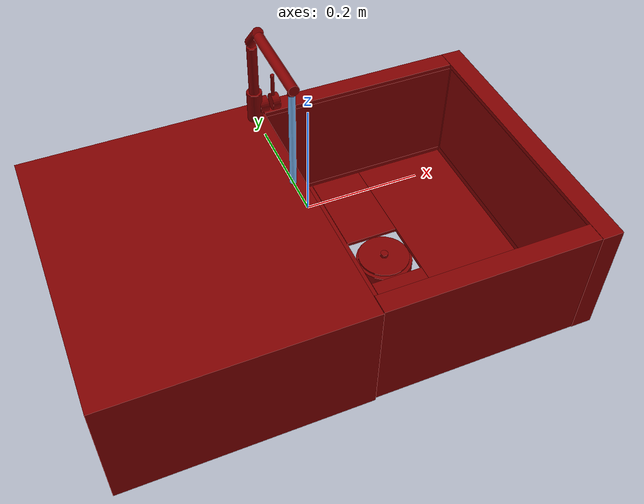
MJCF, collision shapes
<mujoco model="model">
  <compiler angle="radian"/>
  <asset>
    <mesh file="visuals/handle.obj" name="handle_vis"/>
    <mesh file="visuals/Body001.obj" name="Body001_vis"/>
    <mesh file="visuals/Funnel001.obj" name="Funnel001_vis"/>
    <mesh file="visuals/spout.obj" name="spout_vis"/>
    <texture file="visuals/T_BC001.png" name="Body001_material" type="2d"/>
    <material name="Body001_material" rgba="1 1 1 1.0" texture="Body001_material" shininess="0.587886393070221" specular="1"/>
    <texture file="visuals/T_BC001.png" name="handle_material" type="2d"/>
    <material name="handle_material" rgba="1 1 1 1.0" texture="handle_material" shininess="0.587886393070221" specular="1"/>
    <texture file="visuals/T_BC001.png" name="Funnel001_material" type="2d"/>
    <material name="Funnel001_material" rgba="1 1 1 1.0" texture="Funnel001_material" shininess="0.587886393070221" specular="1"/>
    <texture file="visuals/T_BC001.png" name="spout_material" type="2d"/>
    <material name="spout_material" rgba="1 1 1 1.0" texture="spout_material" shininess="0.587886393070221" specular="1"/>
  </asset>
  <default>
    <default class="visual">
      <geom conaffinity="0" contype="0" group="1" type="mesh"/>
    </default>
    <default class="collision">
      <geom group="0" rgba="0.5 0 0 0.5"/>
    </default>
    <default class="spawn">
      <geom group="0" rgba="1 1 1 0.5" contype="0" conaffinity="0"/>
      <site group="0" rgba="1 1 1 0.5"/>
    </default>
    <default class="region">
      <geom group="1" conaffinity="0" contype="0" rgba="0 1 0 0"/>
    </default>
  </default>
  <worldbody>
    <body>
      <body name="object">
        <geom mesh="Body001_vis" type="mesh" solimp="0.998 0.998 0.001" solref="0.001 1" density="100" friction="0.95 0.3 0.1" class="visual" material="Body001_material"/>
        <geom class="collision" type="box" pos="-0.21076612174510956 -0.0005561533616855741 -0.0936313271522522" size="0.22134000062942505 0.26505807042121887 0.11628822237253189" quat="1.0 0.0 0.0 0.0"/>
        <geom class="collision" type="box" pos="0.41280630230903625 -0.0005561533616855741 -0.09086722880601883" size="0.019370416179299355 0.26505807042121887 0.11398898810148239" quat="1.0 0.0 0.0 0.0"/>
        <geom class="collision" type="box" pos="0.20225779712200165 0.24694393575191498 -0.09086722880601883" size="0.19086593389511108 0.017557986080646515 0.11398898810148239" quat="1.0 0.0 0.0 0.0"/>
        <geom class="collision" type="box" pos="0.20225779712200165 -0.247104212641716 -0.09086722880601883" size="0.19086593389511108 0.017557986080646515 0.11398898810148239" quat="1.0 0.0 0.0 0.0"/>
        <geom class="collision" type="box" pos="0.20225779712200165 -0.22995342314243317 -0.08435947448015213" size="0.19086593389511108 0.0014722681371495128 0.09959064424037933" quat="1.0 0.0 0.0 0.0"/>
        <geom class="collision" type="box" pos="0.20225779712200165 0.2299175262451172 -0.08435947448015213" size="0.19086593389511108 0.0014722681371495128 0.09959064424037933" quat="1.0 0.0 0.0 0.0"/>
        <geom class="collision" type="box" pos="0.011570149101316929 0.00032855570316314697 -0.08435947448015213" size="0.0011739537585526705 0.22482742369174957 0.09959064424037933" quat="1.0 0.0 0.0 0.0"/>
        <geom class="collision" type="box" pos="0.3944794535636902 0.00032855570316314697 -0.08435947448015213" size="0.0011739537585526705 0.22482742369174957 0.09959064424037933" quat="1.0 0.0 0.0 0.0"/>
        <geom class="collision" type="box" pos="0.05898582190275192 0.00030895788222551346 -0.19227582216262817" size="0.04391580447554588 0.2241944819688797 0.0038830465637147427" quat="1.0 0.0 0.0 0.0"/>
        <geom class="collision" type="box" pos="0.2974621653556824 0.00030895788222551346 -0.19227582216262817" size="0.09127664566040039 0.2241944819688797 0.0038830465637147427" quat="1.0 0.0 0.0 0.0"/>
        <geom class="collision" type="box" pos="0.15470601618289948 0.13899290561676025 -0.19227582216262817" size="0.05106835067272186 0.08551053702831268 0.0038830465637147427" quat="1.0 0.0 0.0 0.0"/>
        <geom class="collision" type="box" pos="0.15470601618289948 -0.13797089457511902 -0.19227582216262817" size="0.05106835067272186 0.08478891849517822 0.0038830465637147427" quat="1.0 0.0 0.0 0.0"/>
        <geom class="collision" type="cylinder" pos="-0.008167045190930367 0.22527767717838287 0.05134399235248566" size="0.013920615427196026 0.02904500439763069" quat="1.0 0.0 0.0 0.0"/>
        <geom class="collision" type="cylinder" pos="0.006391857750713825 0.22415068745613098 0.05050051584839821" size="0.013920619152486324 0.008274792693555355" quat="0.7071069478988647 -4.7503021960437763e-08 0.7071065902709961 4.750299709144201e-08"/>
        <geom class="collision" type="cylinder" pos="0.1553701013326645 -0.00035774707794189453 -0.21205151081085205" size="0.05291753634810448 0.016290171071887016" quat="1.0 0.0 0.0 0.0"/>
        <body name="handle">
          <joint axis="1.0 0.0 0.0" pos="0.020880868658423424 0.22473663091659546 0.0504760667681694" limited="true" name="handle_joint_hinge_0" type="hinge" range="-0.7853981633974483 0.7853981633974483" damping="1" frictionloss="1" armature=".01" stiffness="0.05"/>
          <joint axis="0.0 1.0 0.0" pos="0.020880868658423424 0.22473663091659546 0.0504760667681694" limited="true" name="handle_joint_hinge_1" type="hinge" range="0.0 0.2617993877991494" damping="1" frictionloss="1" armature=".01" stiffness="0.05"/>
          <geom mesh="handle_vis" type="mesh" solimp="0.998 0.998 0.001" solref="0.001 1" density="100" friction="0.95 0.3 0.1" class="visual" material="handle_material"/>
          <geom class="collision" type="cylinder" pos="0.02650473266839981 0.22471670806407928 0.08590854704380035" size="0.003368337405845523 0.021307164803147316" quat="1.9470718370939721e-07 -6.717942824252532e-08 1.0 1.3435884227419592e-07"/>
          <geom class="collision" type="cylinder" pos="0.028817294165492058 0.22448906302452087 0.05017698183655739" size="0.014957386068999767 0.006886166986078024" quat="0.70710688829422 -4.7503021960437763e-08 0.7071066498756409 4.750300774958305e-08"/>
        </body>
        <body name="Funnel001">
          <joint axis="0.0 0.0 1.0" pos="0.15455596148967743 -0.00021751970052719116 -0.1863158643245697" limited="true" name="Funnel001_joint" range="0.0 0.1" type="slide" damping="1" frictionloss="1" armature=".01" stiffness="0.05"/>
          <geom mesh="Funnel001_vis" type="mesh" solimp="0.998 0.998 0.001" solref="0.001 1" density="100" friction="0.95 0.3 0.1" class="visual" material="Funnel001_material"/>
          <geom class="collision" type="cylinder" pos="0.15409749746322632 -0.00035774707794189453 -0.18979740142822266" size="0.04837030544877052 0.0016084375092759728" quat="1.0 0.0 0.0 0.0"/>
          <geom class="collision" type="cylinder" pos="0.1546410471200943 -0.00022231147158890963 -0.18476206064224243" size="0.007228328380733728 0.0034357034601271152" quat="1.0 0.0 0.0 0.0"/>
        </body>
        <body name="spout">
          <joint axis="0.0 0.0 1.0" pos="-0.008259943686425686 0.2240859866142273 0.19120851159095764" limited="true" name="spout_joint" range="0.0 0.7853981633974483" type="hinge" damping="1" frictionloss="1" armature=".01" stiffness="0.05"/>
          <site type="cylinder" rgba="0.5 0.75 1 1" size="0.005772154778242111 0.2162049263715744" pos="-0.008217005990445614 0.04347442463040352 -0.010260945186018944" name="water"/>
          <geom mesh="spout_vis" type="mesh" solimp="0.998 0.998 0.001" solref="0.001 1" density="100" friction="0.95 0.3 0.1" class="visual" material="spout_material"/>
          <geom class="collision" type="cylinder" pos="-0.008585430681705475 0.22403819859027863 0.12787964940071106" size="0.009026975370943546 0.047061484307050705" quat="1.0 0.0 0.0 0.0"/>
          <geom class="collision" type="cylinder" pos="-0.008585430681705475 0.10862398147583008 0.2191425859928131" size="0.009026975370943546 0.07580804079771042" quat="0.7071068286895752 0.7071067690849304 1.5700924318127872e-16 5.9269340452702814e-24"/>
          <geom class="collision" type="cylinder" pos="-0.008585432544350624 0.20785319805145264 0.20345309376716614" size="0.009639048017561436 0.029844213277101517" quat="0.9302526712417603 0.36691954731941223 8.147251254125512e-17 3.892325692199141e-24"/>
          <geom class="collision" type="cylinder" pos="-0.008585430681705475 0.04354710876941681 0.20944294333457947" size="0.006854245904833078 0.003997443709522486" quat="1.0 0.0 0.0 0.0"/>
        </body>
        <geom class="region" name="reg_main" type="box" pos="-7.450580596923828e-09 0.0 -0.10267628729343414" size="0.43087199330329895 0.26440146565437317 0.12494564056396484"/>
        <geom class="region" name="reg_basin" type="box" pos="0.20258470065891743 -0.0004663541913032532 -0.07807298935949802" size="0.18709026090800762 0.2266618236899376 0.09978893958032131"/>
      </body>
    </body>
  </worldbody>
  <actuator>
    <motor name="handle_joint_hinge_0_actuator" joint="handle_joint_hinge_0" gear="10"/>
    <motor name="handle_joint_hinge_1_actuator" joint="handle_joint_hinge_1" gear="10"/>
    <motor name="Funnel001_joint_actuator" joint="Funnel001_joint" gear="10"/>
    <motor name="spout_joint_actuator" joint="spout_joint" gear="10"/>
  </actuator>
</mujoco>
